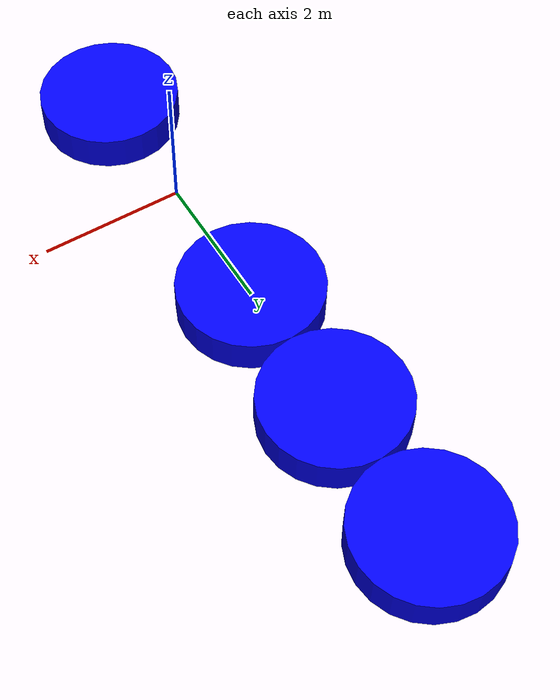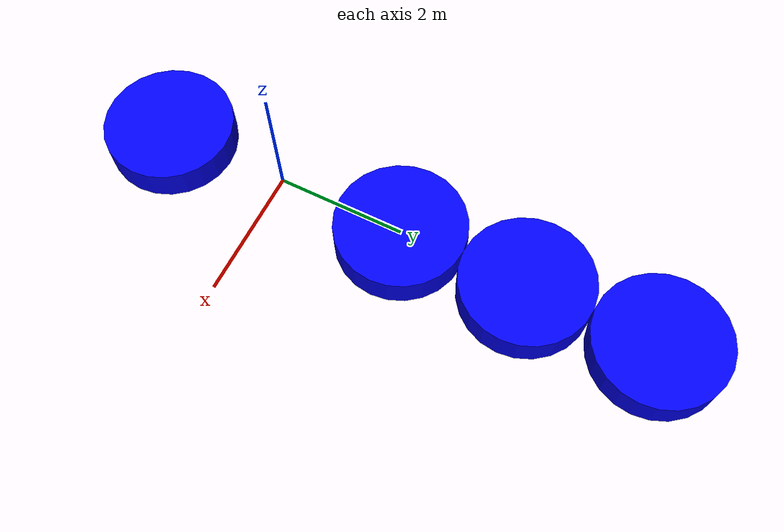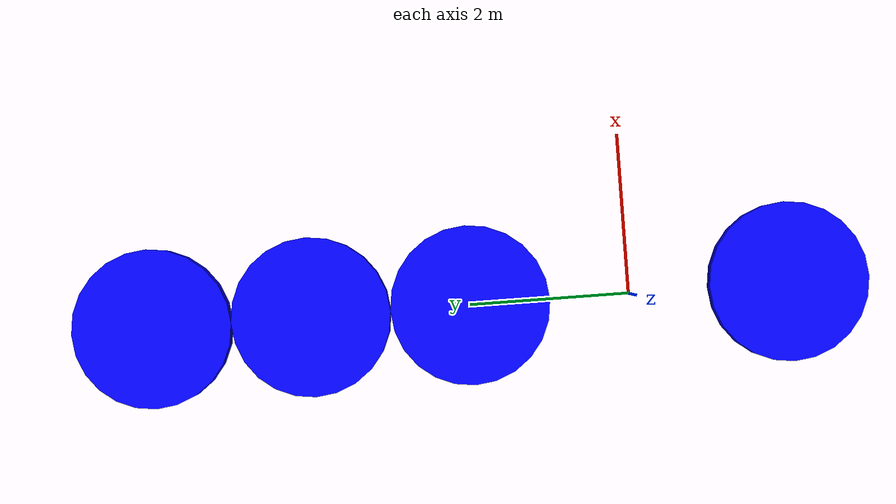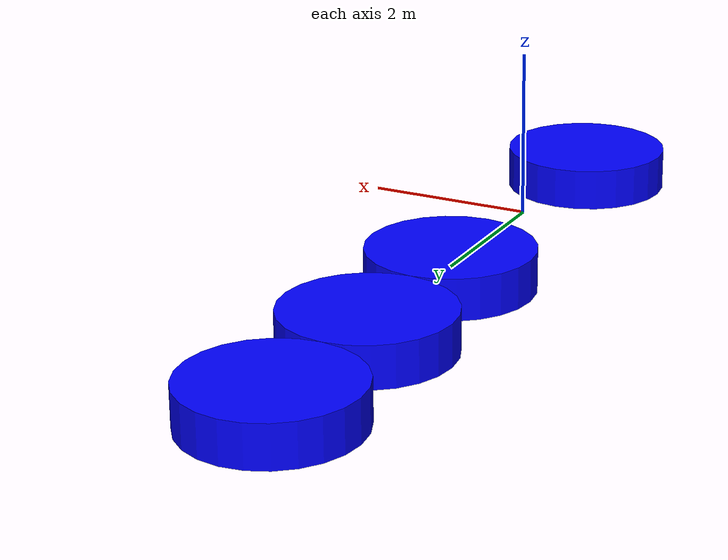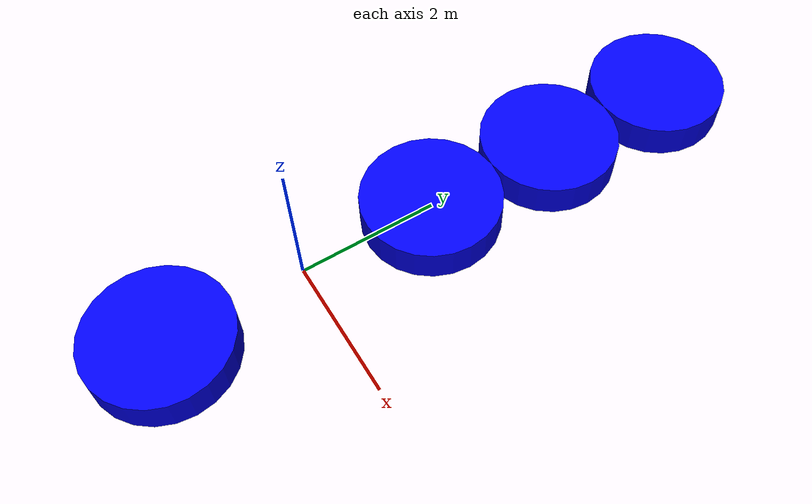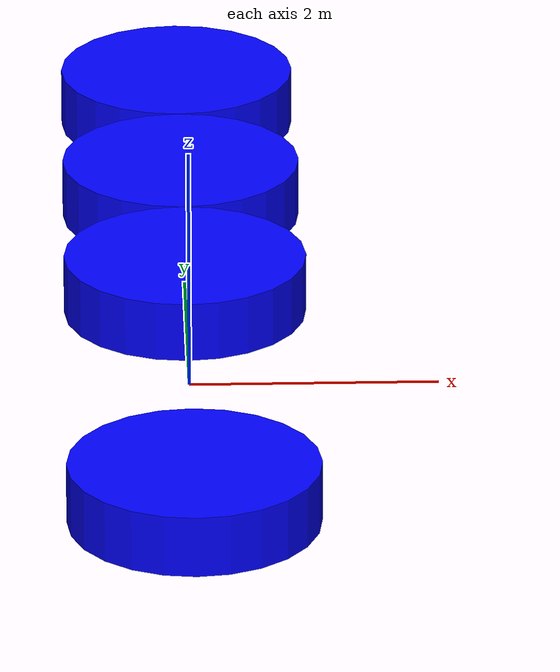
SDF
<?xml version="1.0" ?>
<sdf version="1.8">
    <world name="world_demo">

        <physics name="1ms" type="ignored">
            <max_step_size>.0005</max_step_size>
            <real_time_factor>1.0</real_time_factor>
        </physics>

        <plugin filename="libignition-gazebo-physics-system.so" name="ignition::gazebo::systems::Physics">
            <engine>"libignition-physics-dartsim-plugin.so"</engine>
        </plugin>

        <plugin filename="libignition-gazebo-user-commands-system.so" name="ignition::gazebo::systems::UserCommands"/>
        <plugin filename="libignition-gazebo-scene-broadcaster-system.so" name="ignition::gazebo::systems::SceneBroadcaster"/>

        <gui fullscreen="0">

            <!-- 3D scene -->
            <plugin filename="GzScene3D" name="3D View">
                <ignition-gui>
                    <title>3D View</title>
                    <property key="showTitleBar" type="bool">false</property>
                    <property key="state" type="string">docked</property>
                </ignition-gui>

                <engine>ogre</engine>
                <scene>scene</scene>
                <ambient_light>1.0 1.0 1.0</ambient_light>
                <background_color>0.8 0.8 0.8</background_color>
                <camera_pose>-6 0 6 0 0.5 0</camera_pose>
            </plugin>

            <!-- World control -->
            <plugin filename="WorldControl" name="World control">
                <ignition-gui>
                    <title>World control</title>
                    <property key="showTitleBar" type="bool">false</property>
                    <property key="resizable" type="bool">false</property>
                    <property key="height" type="double">72</property>
                    <property key="width" type="double">121</property>
                    <property key="z" type="double">1</property>
                    <property key="state" type="string">floating</property>
                    <anchors target="3D View">
                        <line own="left" target="left"/>
                        <line own="bottom" target="bottom"/>
                    </anchors>
                </ignition-gui>

                <play_pause>true</play_pause>
                <step>true</step>
                <start_paused>true</start_paused>
                <service>/world/world_demo/control</service>
                <stats_topic>/world/world_demo/stats</stats_topic>
            </plugin>

            <!-- World statistics -->
            <plugin filename="WorldStats" name="World stats">
                <ignition-gui>
                    <title>World stats</title>
                    <property key="showTitleBar" type="bool">false</property>
                    <property key="resizable" type="bool">false</property>
                    <property key="height" type="double">110</property>
                    <property key="width" type="double">290</property>
                    <property key="z" type="double">1</property>
                    <property key="state" type="string">floating</property>
                    <anchors target="3D View">
                        <line own="right" target="right"/>
                        <line own="bottom" target="bottom"/>
                    </anchors>
                </ignition-gui>
                <sim_time>true</sim_time>
                <real_time>true</real_time>
                <real_time_factor>true</real_time_factor>
                <iterations>true</iterations>
                <topic>/world/world_demo/stats</topic>
            </plugin>

            <!-- Entity tree -->
            <plugin filename="EntityTree" name="Entity tree"/>
        </gui>

        <light name="sun" type="directional">
            <cast_shadows>true</cast_shadows>
            <pose>0 0 10 0 0 0</pose>
            <diffuse>0.8 0.8 0.8 1</diffuse>
            <specular>0.2 0.2 0.2 1</specular>
            <attenuation>
                <range>1000</range>
                <constant>0.9</constant>
                <linear>0.01</linear>
                <quadratic>0.001</quadratic>
            </attenuation>
            <direction>-0.5 0.1 -0.9</direction>
        </light>

        <model name="Proto Pneumatic Spring Test">
            <pose relative_to="world">0 0 0 0 0 0</pose>
            <!--the pose is relative to the world by default-->

            <!-- Create Body on the right that has a spring const specified by the dynamics of the joint -->
            <link name="Cyl_Right">
                <pose relative_to="__model__">0 -2 0 0 0 0</pose>
                <inertial>
                    <mass>100</mass>
                    <inertia>
                        <ixx>39583333333</ixx>
                        <ixy>0</ixy>
                        <ixz>0</ixz>
                        <iyy>39583333333</iyy>
                        <iyz>0</iyz>
                        <izz>12500000000</izz>
                    </inertia>
                </inertial>
                <visual name="visual">
                    <geometry>
                        <cylinder>
                            <radius>1.0</radius>
                            <length>0.5</length>
                        </cylinder>
                    </geometry>
                    <!--let's add color to our link-->
                    <material>
                        <ambient>0.0 0.0 1.0 1</ambient>
                        <diffuse>0.0 0.0 1.0 1</diffuse>
                        <specular>0.0 0.0 1.0 1</specular>
                    </material>
                </visual>
            </link>

            <joint name="joint_right" type="prismatic">
                <parent>world</parent>
                <child>Cyl_Right</child>
                <pose>0.0 0.0 -2.0 0 0 0</pose>
                <axis>
                    <limit>
                        <lower>-10000.0</lower>
                        <upper>10000.0</upper>
                    </limit>
                    <xyz>0.0 0.0 1.0</xyz>
                    <dynamics>
                        <spring_stiffness>100</spring_stiffness>
                        <spring_reference>0.0</spring_reference>
                        <damping>0.0</damping>
                        <friction>0.0</friction>
                    </dynamics>
                </axis>
            </joint>

            <!-- Create Body on the left that has a spring const specified by the Pneumatic Spring Plugin" -->
            <link name="Cyl_Left">
                <pose relative_to="__model__">0 2 0 0 0 0</pose>
                <inertial>
                    <mass>100</mass>
                    <inertia>
                        <ixx>39583333333</ixx>
                        <ixy>0</ixy>
                        <ixz>0</ixz>
                        <iyy>39583333333</iyy>
                        <iyz>0</iyz>
                        <izz>12500000000</izz>
                    </inertia>
                </inertial>
                <visual name="visual">
                    <geometry>
                        <cylinder>
                            <radius>1.0</radius>
                            <length>0.5</length>
                        </cylinder>
                    </geometry>
                    <!--let's add color to our link-->
                    <material>
                        <ambient>0.0 1.0 1.0 1</ambient>
                        <diffuse>0.0 0.0 1.0 1</diffuse>
                        <specular>0.0 0.0 1.0 1</specular>
                    </material>
                </visual>
            </link>

            <joint name="joint_left" type="prismatic">
                <parent>world</parent>
                <child>Cyl_Left</child>
                <pose>0.0 0.0 -2.0 0 0 0</pose>
                <axis>
                    <limit>
                        <lower>-10000.0</lower>
                        <upper>10000.0</upper>
                    </limit>
                    <xyz>0.0 0.0 1.0</xyz>
                </axis>
            </joint>

            <!-- Add two springs in parallel that add up to match the inherent spring constant for the right cylinder -->
            <plugin filename="ProtoPneumaticSpring" name="ignition::gazebo::systems::ProtoPneumaticSpring">
                <JointName>joint_left</JointName>
                <SpringConst>50</SpringConst>
            </plugin>
            <plugin filename="ProtoPneumaticSpring" name="ignition::gazebo::systems::ProtoPneumaticSpring">
                <JointName>joint_left</JointName>
                <SpringConst>50</SpringConst>
            </plugin>

            <!-- Create Body Using Adiabatic Pneumatic Spring Plugin" -->
            <link name="Cyl_Adiabatic">
                <pose relative_to="__model__">0 4 0 0 0 0</pose>
                <inertial>
                    <mass>48</mass>
                    <inertia>
                        <ixx>1</ixx>
                        <ixy>0</ixy>
                        <ixz>0</ixz>
                        <iyy>1</iyy>
                        <iyz>0</iyz>
                        <izz>1</izz>
                    </inertia>
                </inertial>
                <visual name="visual">
                    <geometry>
                        <cylinder>
                            <radius>1.0</radius>
                            <length>0.5</length>
                        </cylinder>
                    </geometry>
                    <!--let's add color to our link-->
                    <material>
                        <ambient>1.0 1.0 0.0 1</ambient>
                        <diffuse>0.0 0.0 1.0 1</diffuse>
                        <specular>0.0 0.0 1.0 1</specular>
                    </material>
                </visual>
            </link>

            <joint name="joint_adiabatic" type="prismatic">
                <parent>world</parent>
                <child>Cyl_Adiabatic</child>
                <pose>0.0 0.0 -2.0 0 0 0</pose>
                <axis>
                    <limit>
                        <lower>0.0</lower>
                        <upper>2.03</upper>
                    </limit>
                    <xyz>0.0 0.0 1.0</xyz>
                </axis>
            </joint>

            <!-- Add Upper/Lower Adiabatic Spring plugin -->
            <plugin filename="PolytropicPneumaticSpring" name="ignition::gazebo::systems::PolytropicPneumaticSpring">
                <JointName>joint_adiabatic</JointName>
                <chamber>upper_adiabatic</chamber>
                <n>1.4</n>
                <stroke>2.03</stroke>
                <x0>0.9921</x0>
                <piston_area>0.0127</piston_area>
                <dead_volume>0.0266</dead_volume>
                <P0>410240</P0>
                <T0>283.15</T0>
                <R_specific>0.2968</R_specific>
                <c_p>1.04</c_p>
            </plugin>

            <plugin filename="PolytropicPneumaticSpring" name="ignition::gazebo::systems::PolytropicPneumaticSpring">
                <JointName>joint_adiabatic</JointName>
                <chamber>lower_adiabatic</chamber>
                <n>1.4</n>
                <stroke>2.03</stroke>
                <x0>1.0379</x0>
                <piston_area>0.0115</piston_area>
                <dead_volume>0.0523</dead_volume>
                <P0>1212100</P0>
                <T0>283.15</T0>
                <R_specific>0.2968</R_specific>
                <c_p>1.04</c_p>
            </plugin>

            <!-- Create Body Using Polytropic Pneumatic Spring Plugin" -->
            <link name="Cyl_Poly">
                <pose relative_to="__model__">0 6 0 0 0 0</pose>
                <inertial>
                    <mass>48</mass>
                    <inertia>
                        <ixx>1</ixx>
                        <ixy>0</ixy>
                        <ixz>0</ixz>
                        <iyy>1</iyy>
                        <iyz>0</iyz>
                        <izz>1</izz>
                    </inertia>
                </inertial>
                <visual name="visual">
                    <geometry>
                        <cylinder>
                            <radius>1.0</radius>
                            <length>0.5</length>
                        </cylinder>
                    </geometry>
                    <!--let's add color to our link-->
                    <material>
                        <ambient>1.0 1.0 0.0 1</ambient>
                        <diffuse>0.0 0.0 1.0 1</diffuse>
                        <specular>0.0 0.0 1.0 1</specular>
                    </material>
                </visual>
            </link>

            <joint name="joint_poly" type="prismatic">
                <parent>world</parent>
                <child>Cyl_Poly</child>
                <pose>0.0 0.0 -2.0 0 0 0</pose>
                <axis>
                    <limit>
                        <lower>0.0</lower>
                        <upper>2.03</upper>
                    </limit>
                    <xyz>0.0 0.0 1.0</xyz>
                </axis>
            </joint>

            <!-- Add Upper/Lower Polytropic Spring plugin -->
            <plugin filename="PolytropicPneumaticSpring" name="ignition::gazebo::systems::PolytropicPneumaticSpring">
                <JointName>joint_poly</JointName>
                <chamber>upper_polytropic</chamber>
                <stroke>2.03</stroke>
                <piston_area>0.0127</piston_area>
                <dead_volume>0.0266</dead_volume>
                <T0>283.15</T0>
                <R_specific>0.2968</R_specific>
                <c_p>1.04</c_p>
                <hysteresis>true</hysteresis>
                <n1>1.2371</n1>
                <n2>1.2307</n2>
                <x1>0.9790</x1>
                <x2>1.1912</x2>
                <P1>410291</P1>
                <P2>410266</P2>
            </plugin>

            <plugin filename="PolytropicPneumaticSpring" name="ignition::gazebo::systems::PolytropicPneumaticSpring">
                <JointName>joint_poly</JointName>
                <chamber>lower_polytropic</chamber>
                <stroke>2.03</stroke>
                <piston_area>0.0115</piston_area>
                <dead_volume>0.0523</dead_volume>
                <T0>283.15</T0>
                <R_specific>0.2968</R_specific>
                <c_p>1.04</c_p>
                <hysteresis>true</hysteresis>
                <n1>1.2327</n1>
                <n2>1.2518</n2>
                <x1>1.1958</x1>
                <x2>1.3935</x2>
                <P1>1212090</P1>
                <P2>1212140</P2>
            </plugin>

        </model>
    </world>
</sdf>
